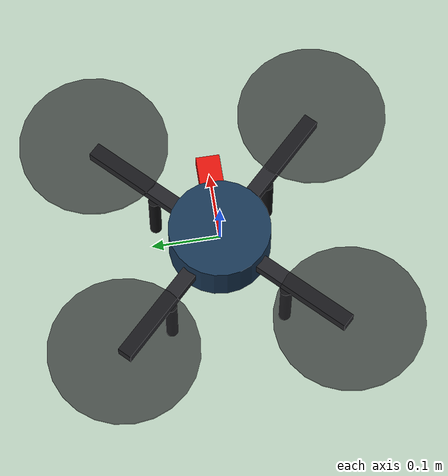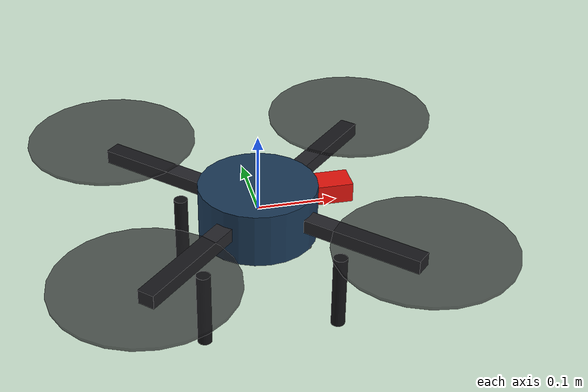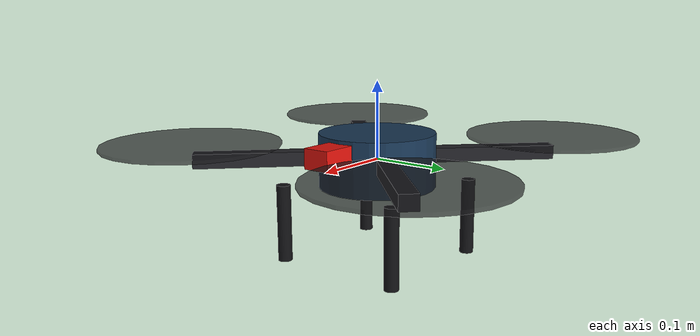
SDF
<?xml version="1.0"?>
<sdf version="1.9">
  <model name="omrs_quadrotor">
    <static>false</static>
    <self_collide>false</self_collide>

    <link name="base_link">
      <inertial>
        <mass>1.196</mass>
        <inertia>
          <ixx>0.0178</ixx>
          <ixy>0.0</ixy>
          <ixz>0.0</ixz>
          <iyy>0.0178</iyy>
          <iyz>0.0</iyz>
          <izz>0.0318</izz>
        </inertia>
      </inertial>

      <collision name="body_collision">
        <geometry>
          <cylinder>
            <radius>0.075</radius>
            <length>0.070</length>
          </cylinder>
        </geometry>
      </collision>

      <visual name="body_visual">
        <geometry>
          <cylinder>
            <radius>0.075</radius>
            <length>0.070</length>
          </cylinder>
        </geometry>
        <material>
          <ambient>0.08 0.12 0.16 1</ambient>
          <diffuse>0.10 0.22 0.34 1</diffuse>
          <specular>0.25 0.25 0.25 1</specular>
        </material>
      </visual>

      <visual name="arm_ne_sw">
        <pose>0 0 0.005 0 0 0.78539816339</pose>
        <geometry><box><size>0.460 0.022 0.018</size></box></geometry>
        <material>
          <ambient>0.08 0.08 0.09 1</ambient>
          <diffuse>0.14 0.14 0.16 1</diffuse>
        </material>
      </visual>
      <visual name="arm_nw_se">
        <pose>0 0 0.005 0 0 -0.78539816339</pose>
        <geometry><box><size>0.460 0.022 0.018</size></box></geometry>
        <material>
          <ambient>0.08 0.08 0.09 1</ambient>
          <diffuse>0.14 0.14 0.16 1</diffuse>
        </material>
      </visual>

      <!-- A small red nose marker makes yaw / body-x visually obvious. -->
      <visual name="nose_marker">
        <pose>0.095 0 0.018 0 0 0</pose>
        <geometry><box><size>0.045 0.035 0.025</size></box></geometry>
        <material>
          <ambient>0.65 0.05 0.04 1</ambient>
          <diffuse>0.90 0.08 0.05 1</diffuse>
        </material>
      </visual>

      <!-- Four landing legs. With the model center at z=0.16 m, the feet rest
           on a charging platform whose top surface is at z=0.03 m. -->
      <collision name="leg_fl_collision">
        <pose>0.085 0.085 -0.080 0 0 0</pose>
        <geometry><cylinder><radius>0.009</radius><length>0.100</length></cylinder></geometry>
      </collision>
      <collision name="leg_fr_collision">
        <pose>0.085 -0.085 -0.080 0 0 0</pose>
        <geometry><cylinder><radius>0.009</radius><length>0.100</length></cylinder></geometry>
      </collision>
      <collision name="leg_rl_collision">
        <pose>-0.085 0.085 -0.080 0 0 0</pose>
        <geometry><cylinder><radius>0.009</radius><length>0.100</length></cylinder></geometry>
      </collision>
      <collision name="leg_rr_collision">
        <pose>-0.085 -0.085 -0.080 0 0 0</pose>
        <geometry><cylinder><radius>0.009</radius><length>0.100</length></cylinder></geometry>
      </collision>

      <visual name="leg_fl_visual">
        <pose>0.085 0.085 -0.080 0 0 0</pose>
        <geometry><cylinder><radius>0.009</radius><length>0.100</length></cylinder></geometry>
        <material><diffuse>0.07 0.07 0.08 1</diffuse></material>
      </visual>
      <visual name="leg_fr_visual">
        <pose>0.085 -0.085 -0.080 0 0 0</pose>
        <geometry><cylinder><radius>0.009</radius><length>0.100</length></cylinder></geometry>
        <material><diffuse>0.07 0.07 0.08 1</diffuse></material>
      </visual>
      <visual name="leg_rl_visual">
        <pose>-0.085 0.085 -0.080 0 0 0</pose>
        <geometry><cylinder><radius>0.009</radius><length>0.100</length></cylinder></geometry>
        <material><diffuse>0.07 0.07 0.08 1</diffuse></material>
      </visual>
      <visual name="leg_rr_visual">
        <pose>-0.085 -0.085 -0.080 0 0 0</pose>
        <geometry><cylinder><radius>0.009</radius><length>0.100</length></cylinder></geometry>
        <material><diffuse>0.07 0.07 0.08 1</diffuse></material>
      </visual>
    </link>

    <!-- Rotor ordering matches QuadrotorConfig.rotor_positions_body:
         0=(+,+), 1=(-,+), 2=(-,-), 3=(+,-). -->
    <link name="rotor_0">
      <pose relative_to="base_link">0.16263456 0.16263456 0.025 0 0 0</pose>
      <inertial><mass>0.001</mass><inertia><ixx>0.000006</ixx><ixy>0</ixy><ixz>0</ixz><iyy>0.000006</iyy><iyz>0</iyz><izz>0.000012</izz></inertia></inertial>
      <visual name="propeller"><geometry><cylinder><radius>0.110</radius><length>0.004</length></cylinder></geometry><material><diffuse>0.12 0.12 0.13 0.68</diffuse></material></visual>
    </link>
    <link name="rotor_1">
      <pose relative_to="base_link">-0.16263456 0.16263456 0.025 0 0 0</pose>
      <inertial><mass>0.001</mass><inertia><ixx>0.000006</ixx><ixy>0</ixy><ixz>0</ixz><iyy>0.000006</iyy><iyz>0</iyz><izz>0.000012</izz></inertia></inertial>
      <visual name="propeller"><geometry><cylinder><radius>0.110</radius><length>0.004</length></cylinder></geometry><material><diffuse>0.12 0.12 0.13 0.68</diffuse></material></visual>
    </link>
    <link name="rotor_2">
      <pose relative_to="base_link">-0.16263456 -0.16263456 0.025 0 0 0</pose>
      <inertial><mass>0.001</mass><inertia><ixx>0.000006</ixx><ixy>0</ixy><ixz>0</ixz><iyy>0.000006</iyy><iyz>0</iyz><izz>0.000012</izz></inertia></inertial>
      <visual name="propeller"><geometry><cylinder><radius>0.110</radius><length>0.004</length></cylinder></geometry><material><diffuse>0.12 0.12 0.13 0.68</diffuse></material></visual>
    </link>
    <link name="rotor_3">
      <pose relative_to="base_link">0.16263456 -0.16263456 0.025 0 0 0</pose>
      <inertial><mass>0.001</mass><inertia><ixx>0.000006</ixx><ixy>0</ixy><ixz>0</ixz><iyy>0.000006</iyy><iyz>0</iyz><izz>0.000012</izz></inertia></inertial>
      <visual name="propeller"><geometry><cylinder><radius>0.110</radius><length>0.004</length></cylinder></geometry><material><diffuse>0.12 0.12 0.13 0.68</diffuse></material></visual>
    </link>

    <joint name="rotor_0_joint" type="revolute">
      <parent>base_link</parent><child>rotor_0</child>
      <axis><xyz>0 0 1</xyz><limit><lower>-1000000</lower><upper>1000000</upper><effort>1000000</effort><velocity>1000000</velocity></limit></axis>
    </joint>
    <joint name="rotor_1_joint" type="revolute">
      <parent>base_link</parent><child>rotor_1</child>
      <axis><xyz>0 0 1</xyz><limit><lower>-1000000</lower><upper>1000000</upper><effort>1000000</effort><velocity>1000000</velocity></limit></axis>
    </joint>
    <joint name="rotor_2_joint" type="revolute">
      <parent>base_link</parent><child>rotor_2</child>
      <axis><xyz>0 0 1</xyz><limit><lower>-1000000</lower><upper>1000000</upper><effort>1000000</effort><velocity>1000000</velocity></limit></axis>
    </joint>
    <joint name="rotor_3_joint" type="revolute">
      <parent>base_link</parent><child>rotor_3</child>
      <axis><xyz>0 0 1</xyz><limit><lower>-1000000</lower><upper>1000000</upper><effort>1000000</effort><velocity>1000000</velocity></limit></axis>
    </joint>
  </model>
</sdf>
